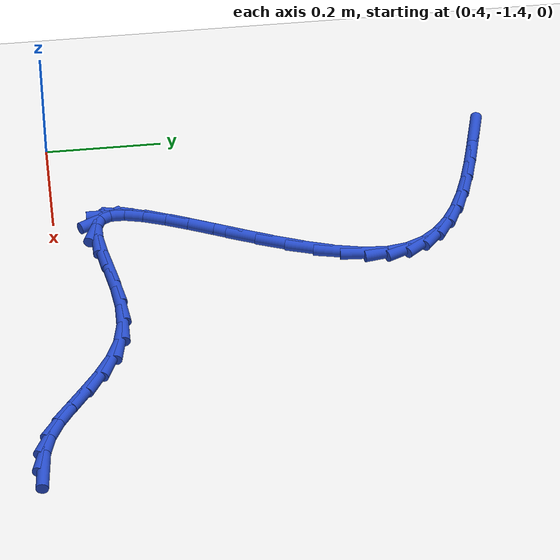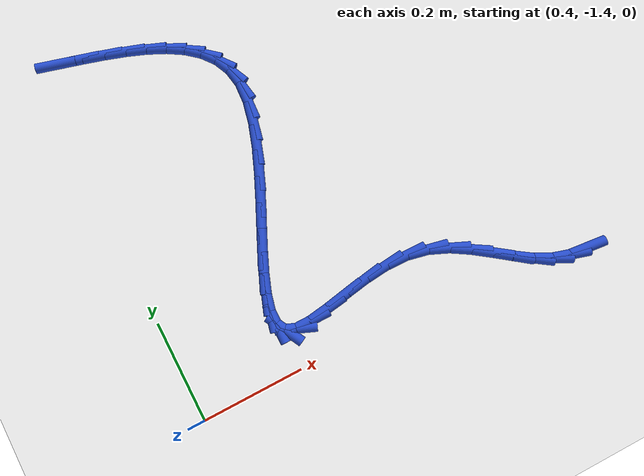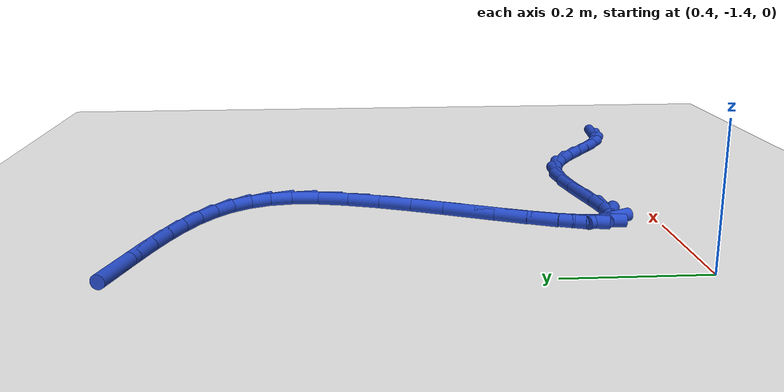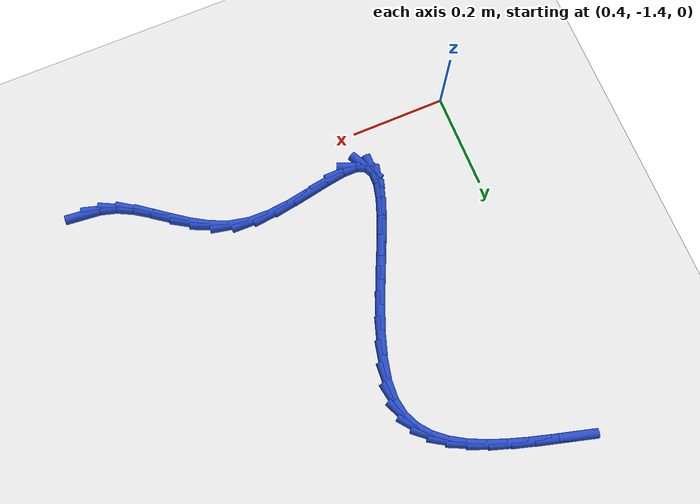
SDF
<sdf version="1.6">
 <world name="default">
  <model name="ground_plane">
   <static>1</static>
   <link name="link">
    <collision name="collision">
     <geometry><plane><normal>0 0 1</normal><size>100 100</size></plane></geometry>
     <surface><friction><ode><mu>100</mu><mu2>50</mu2></ode></friction></surface>
    </collision>
    <visual name="visual">
     <cast_shadows>0</cast_shadows>
     <geometry><plane><normal>0 0 1</normal><size>100 100</size></plane></geometry>
     <material>
      <script><uri>file://media/materials/scripts/gazebo.material</uri><name>Gazebo/WhiteGlow</name></script>
     </material>
    </visual>
   </link>
  </model>
  <model name="line">
   <link name="link_171">
    <pose>1.1835666416521882 -1.4488570318454534 0.01 0 1.57 -0.10229701967259595</pose>
    <collision name="collision">
     <geometry><cylinder><radius>0.01</radius><length>0.08</length></cylinder></geometry>
    </collision>
    <visual name="visual">
     <material>
      <script><name>Gazebo/Blue</name><uri>file://media/materials/scripts/gazebo.material</uri></script>
     </material>
     <geometry><cylinder><radius>0.01</radius><length>0.08</length></cylinder></geometry>
    </visual>
   </link>
   <link name="link_172">
    <pose>1.1497336661679012 -1.4453838957400382 0.01 0 1.57 -0.2885098371365078</pose>
    <collision name="collision">
     <geometry><cylinder><radius>0.01</radius><length>0.08</length></cylinder></geometry>
    </collision>
    <visual name="visual">
     <material>
      <script><name>Gazebo/Blue</name><uri>file://media/materials/scripts/gazebo.material</uri></script>
     </material>
     <geometry><cylinder><radius>0.01</radius><length>0.08</length></cylinder></geometry>
    </visual>
   </link>
   <link name="link_173">
    <pose>1.1168959742314235 -1.4356379759844344 0.01 0 1.57 -0.47037643192527284</pose>
    <collision name="collision">
     <geometry><cylinder><radius>0.01</radius><length>0.08</length></cylinder></geometry>
    </collision>
    <visual name="visual">
     <material>
      <script><name>Gazebo/Blue</name><uri>file://media/materials/scripts/gazebo.material</uri></script>
     </material>
     <geometry><cylinder><radius>0.01</radius><length>0.08</length></cylinder></geometry>
    </visual>
   </link>
   <link name="link_174">
    <pose>1.0850391319741282 -1.419440697438003 0.01 0 1.57 -0.5954803593937567</pose>
    <collision name="collision">
     <geometry><cylinder><radius>0.01</radius><length>0.08</length></cylinder></geometry>
    </collision>
    <visual name="visual">
     <material>
      <script><name>Gazebo/Blue</name><uri>file://media/materials/scripts/gazebo.material</uri></script>
     </material>
     <geometry><cylinder><radius>0.01</radius><length>0.08</length></cylinder></geometry>
    </visual>
   </link>
   <link name="link_175">
    <pose>1.0536571499992466 -1.3981787083302915 0.01 0 1.57 -0.6436892424878952</pose>
    <collision name="collision">
     <geometry><cylinder><radius>0.01</radius><length>0.08</length></cylinder></geometry>
    </collision>
    <visual name="visual">
     <material>
      <script><name>Gazebo/Blue</name><uri>file://media/materials/scripts/gazebo.material</uri></script>
     </material>
     <geometry><cylinder><radius>0.01</radius><length>0.08</length></cylinder></geometry>
    </visual>
   </link>
   <link name="link_176">
    <pose>1.0218955890288728 -1.374348199691363 0.01 0 1.57 -0.6263571205427557</pose>
    <collision name="collision">
     <geometry><cylinder><radius>0.01</radius><length>0.08</length></cylinder></geometry>
    </collision>
    <visual name="visual">
     <material>
      <script><name>Gazebo/Blue</name><uri>file://media/materials/scripts/gazebo.material</uri></script>
     </material>
     <geometry><cylinder><radius>0.01</radius><length>0.08</length></cylinder></geometry>
    </visual>
   </link>
   <link name="link_177">
    <pose>0.9888926180850868 -1.350468899386771 0.01 0 1.57 -0.547606615825391</pose>
    <collision name="collision">
     <geometry><cylinder><radius>0.01</radius><length>0.08</length></cylinder></geometry>
    </collision>
    <visual name="visual">
     <material>
      <script><name>Gazebo/Blue</name><uri>file://media/materials/scripts/gazebo.material</uri></script>
     </material>
     <geometry><cylinder><radius>0.01</radius><length>0.08</length></cylinder></geometry>
    </visual>
   </link>
   <link name="link_178">
    <pose>0.9537864061899711 -1.329060535282072 0.01 0 1.57 -0.40714053659990856</pose>
    <collision name="collision">
     <geometry><cylinder><radius>0.01</radius><length>0.08</length></cylinder></geometry>
    </collision>
    <visual name="visual">
     <material>
      <script><name>Gazebo/Blue</name><uri>file://media/materials/scripts/gazebo.material</uri></script>
     </material>
     <geometry><cylinder><radius>0.01</radius><length>0.08</length></cylinder></geometry>
    </visual>
   </link>
   <link name="link_179">
    <pose>0.9157151223656061 -1.3126428352428192 0.01 0 1.57 -0.2102388939281366</pose>
    <collision name="collision">
     <geometry><cylinder><radius>0.01</radius><length>0.08</length></cylinder></geometry>
    </collision>
    <visual name="visual">
     <material>
      <script><name>Gazebo/Blue</name><uri>file://media/materials/scripts/gazebo.material</uri></script>
     </material>
     <geometry><cylinder><radius>0.01</radius><length>0.08</length></cylinder></geometry>
    </visual>
   </link>
   <link name="link_180">
    <pose>0.8738347196635656 -1.3037058838094766 0.01 0 1.57 -0.01923452831560634</pose>
    <collision name="collision">
     <geometry><cylinder><radius>0.01</radius><length>0.08</length></cylinder></geometry>
    </collision>
    <visual name="visual">
     <material>
      <script><name>Gazebo/Blue</name><uri>file://media/materials/scripts/gazebo.material</uri></script>
     </material>
     <geometry><cylinder><radius>0.01</radius><length>0.08</length></cylinder></geometry>
    </visual>
   </link>
   <link name="link_181">
    <pose>0.8284452453990194 -1.3028327309995837 0.01 0 1.57 0.10101331853752632</pose>
    <collision name="collision">
     <geometry><cylinder><radius>0.01</radius><length>0.08</length></cylinder></geometry>
    </collision>
    <visual name="visual">
     <material>
      <script><name>Gazebo/Blue</name><uri>file://media/materials/scripts/gazebo.material</uri></script>
     </material>
     <geometry><cylinder><radius>0.01</radius><length>0.08</length></cylinder></geometry>
    </visual>
   </link>
   <link name="link_182">
    <pose>0.781665877086976 -1.3075742080676462 0.01 0 1.57 0.16491444622135018</pose>
    <collision name="collision">
     <geometry><cylinder><radius>0.01</radius><length>0.08</length></cylinder></geometry>
    </collision>
    <visual name="visual">
     <material>
      <script><name>Gazebo/Blue</name><uri>file://media/materials/scripts/gazebo.material</uri></script>
     </material>
     <geometry><cylinder><radius>0.01</radius><length>0.08</length></cylinder></geometry>
    </visual>
   </link>
   <link name="link_183">
    <pose>0.7357777527704908 -1.315211182220481 0.01 0 1.57 0.1809147527424954</pose>
    <collision name="collision">
     <geometry><cylinder><radius>0.01</radius><length>0.08</length></cylinder></geometry>
    </collision>
    <visual name="visual">
     <material>
      <script><name>Gazebo/Blue</name><uri>file://media/materials/scripts/gazebo.material</uri></script>
     </material>
     <geometry><cylinder><radius>0.01</radius><length>0.08</length></cylinder></geometry>
    </visual>
   </link>
   <link name="link_184">
    <pose>0.6930620104926185 -1.3230245206649058 0.01 0 1.57 0.14051327450172077</pose>
    <collision name="collision">
     <geometry><cylinder><radius>0.01</radius><length>0.08</length></cylinder></geometry>
    </collision>
    <visual name="visual">
     <material>
      <script><name>Gazebo/Blue</name><uri>file://media/materials/scripts/gazebo.material</uri></script>
     </material>
     <geometry><cylinder><radius>0.01</radius><length>0.08</length></cylinder></geometry>
    </visual>
   </link>
   <link name="link_185">
    <pose>0.655799788296417 -1.3282950906077364 0.01 0 1.57 0.0002935781557573619</pose>
    <collision name="collision">
     <geometry><cylinder><radius>0.01</radius><length>0.08</length></cylinder></geometry>
    </collision>
    <visual name="visual">
     <material>
      <script><name>Gazebo/Blue</name><uri>file://media/materials/scripts/gazebo.material</uri></script>
     </material>
     <geometry><cylinder><radius>0.01</radius><length>0.08</length></cylinder></geometry>
    </visual>
   </link>
   <link name="link_186">
    <pose>0.626272224224941 -1.3283037592557896 0.01 0 1.57 -0.38560807835696037</pose>
    <collision name="collision">
     <geometry><cylinder><radius>0.01</radius><length>0.08</length></cylinder></geometry>
    </collision>
    <visual name="visual">
     <material>
      <script><name>Gazebo/Blue</name><uri>file://media/materials/scripts/gazebo.material</uri></script>
     </material>
     <geometry><cylinder><radius>0.01</radius><length>0.08</length></cylinder></geometry>
    </visual>
   </link>
   <link name="link_187">
    <pose>0.6067235786359872 -1.3203683750811985 0.01 0 1.57 -1.0878217432007886</pose>
    <collision name="collision">
     <geometry><cylinder><radius>0.01</radius><length>0.08</length></cylinder></geometry>
    </collision>
    <visual name="visual">
     <material>
      <script><name>Gazebo/Blue</name><uri>file://media/materials/scripts/gazebo.material</uri></script>
     </material>
     <geometry><cylinder><radius>0.01</radius><length>0.08</length></cylinder></geometry>
    </visual>
   </link>
   <link name="link_188">
    <pose>0.5978198754716991 -1.3033894558371992 0.01 0 1.57 1.5600169699959452</pose>
    <collision name="collision">
     <geometry><cylinder><radius>0.01</radius><length>0.08</length></cylinder></geometry>
    </collision>
    <visual name="visual">
     <material>
      <script><name>Gazebo/Blue</name><uri>file://media/materials/scripts/gazebo.material</uri></script>
     </material>
     <geometry><cylinder><radius>0.01</radius><length>0.08</length></cylinder></geometry>
    </visual>
   </link>
   <link name="link_189">
    <pose>0.5980891318621678 -1.2784115312074786 0.01 0 1.57 1.329576923753144</pose>
    <collision name="collision">
     <geometry><cylinder><radius>0.01</radius><length>0.08</length></cylinder></geometry>
    </collision>
    <visual name="visual">
     <material>
      <script><name>Gazebo/Blue</name><uri>file://media/materials/scripts/gazebo.material</uri></script>
     </material>
     <geometry><cylinder><radius>0.01</radius><length>0.08</length></cylinder></geometry>
    </visual>
   </link>
   <link name="link_190">
    <pose>0.6059072890754654 -1.246631633880231 0.01 0 1.57 1.218521208958889</pose>
    <collision name="collision">
     <geometry><cylinder><radius>0.01</radius><length>0.08</length></cylinder></geometry>
    </collision>
    <visual name="visual">
     <material>
      <script><name>Gazebo/Blue</name><uri>file://media/materials/scripts/gazebo.material</uri></script>
     </material>
     <geometry><cylinder><radius>0.01</radius><length>0.08</length></cylinder></geometry>
    </visual>
   </link>
   <link name="link_191">
    <pose>0.619650288379665 -1.2092467965436522 0.01 0 1.57 1.163227025366592</pose>
    <collision name="collision">
     <geometry><cylinder><radius>0.01</radius><length>0.08</length></cylinder></geometry>
    </collision>
    <visual name="visual">
     <material>
      <script><name>Gazebo/Blue</name><uri>file://media/materials/scripts/gazebo.material</uri></script>
     </material>
     <geometry><cylinder><radius>0.01</radius><length>0.08</length></cylinder></geometry>
    </visual>
   </link>
   <link name="link_192">
    <pose>0.6376940710428395 -1.167454051885936 0.01 0 1.57 1.1393120758976896</pose>
    <collision name="collision">
     <geometry><cylinder><radius>0.01</radius><length>0.08</length></cylinder></geometry>
    </collision>
    <visual name="visual">
     <material>
      <script><name>Gazebo/Blue</name><uri>file://media/materials/scripts/gazebo.material</uri></script>
     </material>
     <geometry><cylinder><radius>0.01</radius><length>0.08</length></cylinder></geometry>
    </visual>
   </link>
   <link name="link_193">
    <pose>0.6584145783330608 -1.1224504325952793 0.01 0 1.57 1.1371127366721108</pose>
    <collision name="collision">
     <geometry><cylinder><radius>0.01</radius><length>0.08</length></cylinder></geometry>
    </collision>
    <visual name="visual">
     <material>
      <script><name>Gazebo/Blue</name><uri>file://media/materials/scripts/gazebo.material</uri></script>
     </material>
     <geometry><cylinder><radius>0.01</radius><length>0.08</length></cylinder></geometry>
    </visual>
   </link>
   <link name="link_194">
    <pose>0.6801877515184022 -1.075432971359877 0.01 0 1.57 1.1535831420327516</pose>
    <collision name="collision">
     <geometry><cylinder><radius>0.01</radius><length>0.08</length></cylinder></geometry>
    </collision>
    <visual name="visual">
     <material>
      <script><name>Gazebo/Blue</name><uri>file://media/materials/scripts/gazebo.material</uri></script>
     </material>
     <geometry><cylinder><radius>0.01</radius><length>0.08</length></cylinder></geometry>
    </visual>
   </link>
   <link name="link_195">
    <pose>0.701389531866936 -1.027598700867923 0.01 0 1.57 1.18984113948296</pose>
    <collision name="collision">
     <geometry><cylinder><radius>0.01</radius><length>0.08</length></cylinder></geometry>
    </collision>
    <visual name="visual">
     <material>
      <script><name>Gazebo/Blue</name><uri>file://media/materials/scripts/gazebo.material</uri></script>
     </material>
     <geometry><cylinder><radius>0.01</radius><length>0.08</length></cylinder></geometry>
    </visual>
   </link>
   <link name="link_196">
    <pose>0.7203958606467356 -0.9801446538076137 0.01 0 1.57 1.2511157950739307</pose>
    <collision name="collision">
     <geometry><cylinder><radius>0.01</radius><length>0.08</length></cylinder></geometry>
    </collision>
    <visual name="visual">
     <material>
      <script><name>Gazebo/Blue</name><uri>file://media/materials/scripts/gazebo.material</uri></script>
     </material>
     <geometry><cylinder><radius>0.01</radius><length>0.08</length></cylinder></geometry>
    </visual>
   </link>
   <link name="link_197">
    <pose>0.7355826791258735 -0.9342678628671426 0.01 0 1.57 1.3484842750450818</pose>
    <collision name="collision">
     <geometry><cylinder><radius>0.01</radius><length>0.08</length></cylinder></geometry>
    </collision>
    <visual name="visual">
     <material>
      <script><name>Gazebo/Blue</name><uri>file://media/materials/scripts/gazebo.material</uri></script>
     </material>
     <geometry><cylinder><radius>0.01</radius><length>0.08</length></cylinder></geometry>
    </visual>
   </link>
   <link name="link_198">
    <pose>0.745325928572422 -0.891165360734707 0.01 0 1.57 1.5025214473163921</pose>
    <collision name="collision">
     <geometry><cylinder><radius>0.01</radius><length>0.08</length></cylinder></geometry>
    </collision>
    <visual name="visual">
     <material>
      <script><name>Gazebo/Blue</name><uri>file://media/materials/scripts/gazebo.material</uri></script>
     </material>
     <geometry><cylinder><radius>0.01</radius><length>0.08</length></cylinder></geometry>
    </visual>
   </link>
   <link name="link_199">
    <pose>0.7480017751629313 -0.8520340208473842 0.01 0 1.57 -1.4118091321071373</pose>
    <collision name="collision">
     <geometry><cylinder><radius>0.01</radius><length>0.08</length></cylinder></geometry>
    </collision>
    <visual name="visual">
     <material>
      <script><name>Gazebo/Blue</name><uri>file://media/materials/scripts/gazebo.material</uri></script>
     </material>
     <geometry><cylinder><radius>0.01</radius><length>0.08</length></cylinder></geometry>
    </visual>
   </link>
   <link name="link_200">
    <pose>0.7424979990005864 -0.8177084577801585 0.01 0 1.57 -1.1542235697866634</pose>
    <collision name="collision">
     <geometry><cylinder><radius>0.01</radius><length>0.08</length></cylinder></geometry>
    </collision>
    <visual name="visual">
     <material>
      <script><name>Gazebo/Blue</name><uri>file://media/materials/scripts/gazebo.material</uri></script>
     </material>
     <geometry><cylinder><radius>0.01</radius><length>0.08</length></cylinder></geometry>
    </visual>
   </link>
   <link name="link_201">
    <pose>0.7293039547852423 -0.7878892579654115 0.01 0 1.57 -0.9100030272835612</pose>
    <collision name="collision">
     <geometry><cylinder><radius>0.01</radius><length>0.08</length></cylinder></geometry>
    </collision>
    <visual name="visual">
     <material>
      <script><name>Gazebo/Blue</name><uri>file://media/materials/scripts/gazebo.material</uri></script>
     </material>
     <geometry><cylinder><radius>0.01</radius><length>0.08</length></cylinder></geometry>
    </visual>
   </link>
   <link name="link_202">
    <pose>0.7092215461826308 -0.762055701051579 0.01 0 1.57 -0.7072627451760173</pose>
    <collision name="collision">
     <geometry><cylinder><radius>0.01</radius><length>0.08</length></cylinder></geometry>
    </collision>
    <visual name="visual">
     <material>
      <script><name>Gazebo/Blue</name><uri>file://media/materials/scripts/gazebo.material</uri></script>
     </material>
     <geometry><cylinder><radius>0.01</radius><length>0.08</length></cylinder></geometry>
    </visual>
   </link>
   <link name="link_203">
    <pose>0.6830526768584825 -0.7396870666870943 0.01 0 1.57 -0.5532325514887809</pose>
    <collision name="collision">
     <geometry><cylinder><radius>0.01</radius><length>0.08</length></cylinder></geometry>
    </collision>
    <visual name="visual">
     <material>
      <script><name>Gazebo/Blue</name><uri>file://media/materials/scripts/gazebo.material</uri></script>
     </material>
     <geometry><cylinder><radius>0.01</radius><length>0.08</length></cylinder></geometry>
    </visual>
   </link>
   <link name="link_204">
    <pose>0.6515992504785284 -0.7202626345203922 0.01 0 1.57 -0.4418876655527904</pose>
    <collision name="collision">
     <geometry><cylinder><radius>0.01</radius><length>0.08</length></cylinder></geometry>
    </collision>
    <visual name="visual">
     <material>
      <script><name>Gazebo/Blue</name><uri>file://media/materials/scripts/gazebo.material</uri></script>
     </material>
     <geometry><cylinder><radius>0.01</radius><length>0.08</length></cylinder></geometry>
    </visual>
   </link>
   <link name="link_205">
    <pose>0.6156631707084991 -0.7032616841999059 0.01 0 1.57 -0.3641126021315472</pose>
    <collision name="collision">
     <geometry><cylinder><radius>0.01</radius><length>0.08</length></cylinder></geometry>
    </collision>
    <visual name="visual">
     <material>
      <script><name>Gazebo/Blue</name><uri>file://media/materials/scripts/gazebo.material</uri></script>
     </material>
     <geometry><cylinder><radius>0.01</radius><length>0.08</length></cylinder></geometry>
    </visual>
   </link>
   <link name="link_206">
    <pose>0.5760463412141249 -0.6881634953740696 0.01 0 1.57 -0.31220975170134274</pose>
    <collision name="collision">
     <geometry><cylinder><radius>0.01</radius><length>0.08</length></cylinder></geometry>
    </collision>
    <visual name="visual">
     <material>
      <script><name>Gazebo/Blue</name><uri>file://media/materials/scripts/gazebo.material</uri></script>
     </material>
     <geometry><cylinder><radius>0.01</radius><length>0.08</length></cylinder></geometry>
    </visual>
   </link>
   <link name="link_207">
    <pose>0.5335506656611386 -0.6744473476913183 0.01 0 1.57 -0.2807826497688214</pose>
    <collision name="collision">
     <geometry><cylinder><radius>0.01</radius><length>0.08</length></cylinder></geometry>
    </collision>
    <visual name="visual">
     <material>
      <script><name>Gazebo/Blue</name><uri>file://media/materials/scripts/gazebo.material</uri></script>
     </material>
     <geometry><cylinder><radius>0.01</radius><length>0.08</length></cylinder></geometry>
    </visual>
   </link>
   <link name="link_208">
    <pose>0.4889780477152698 -0.6615925208000856 0.01 0 1.57 -0.2664615488320767</pose>
    <collision name="collision">
     <geometry><cylinder><radius>0.01</radius><length>0.08</length></cylinder></geometry>
    </collision>
    <visual name="visual">
     <material>
      <script><name>Gazebo/Blue</name><uri>file://media/materials/scripts/gazebo.material</uri></script>
     </material>
     <geometry><cylinder><radius>0.01</radius><length>0.08</length></cylinder></geometry>
    </visual>
   </link>
   <link name="link_209">
    <pose>0.4431303910422498 -0.649078294348806 0.01 0 1.57 -0.2674854676234839</pose>
    <collision name="collision">
     <geometry><cylinder><radius>0.01</radius><length>0.08</length></cylinder></geometry>
    </collision>
    <visual name="visual">
     <material>
      <script><name>Gazebo/Blue</name><uri>file://media/materials/scripts/gazebo.material</uri></script>
     </material>
     <geometry><cylinder><radius>0.01</radius><length>0.08</length></cylinder></geometry>
    </visual>
   </link>
  </model>
 </world>
</sdf>
